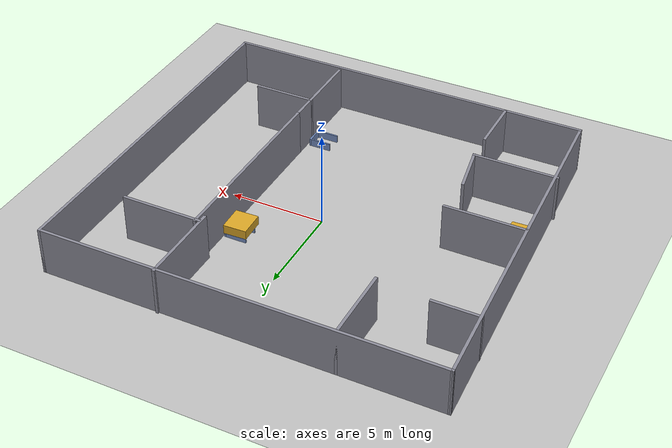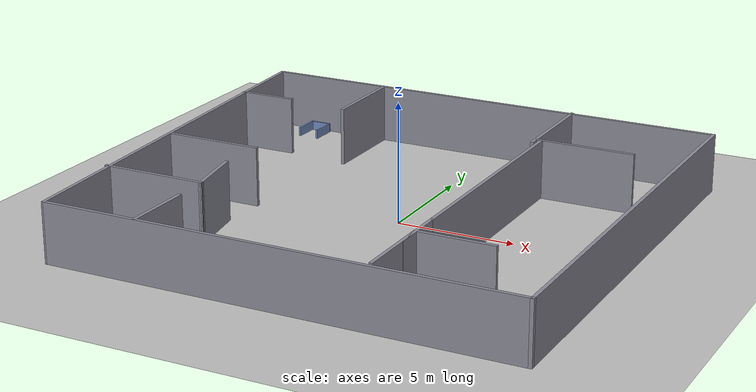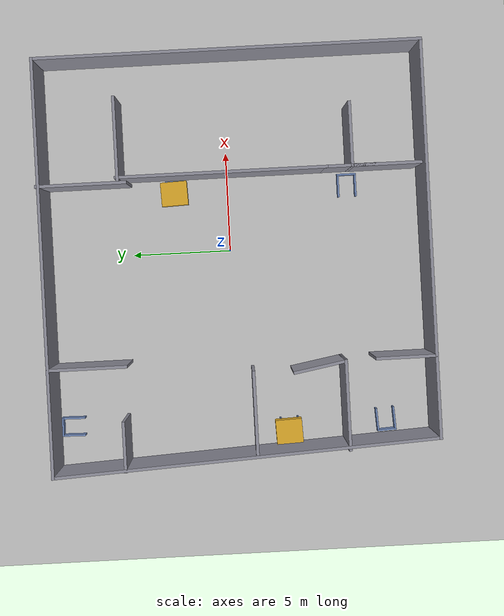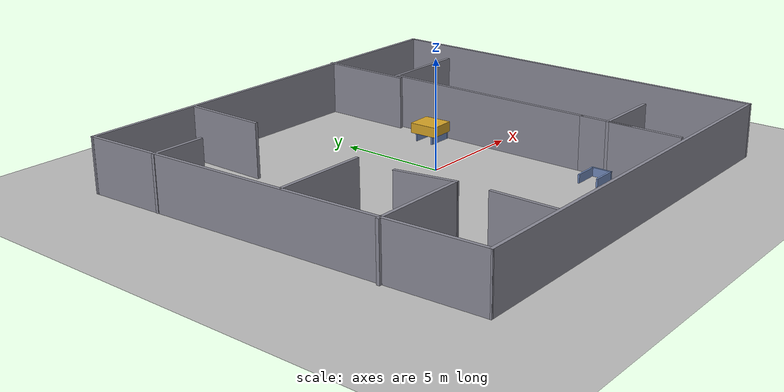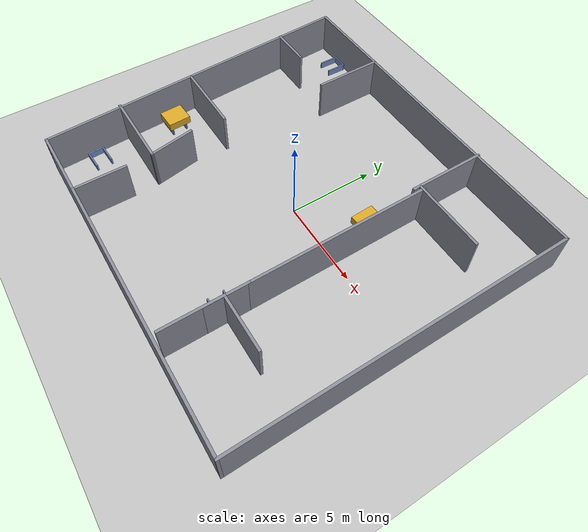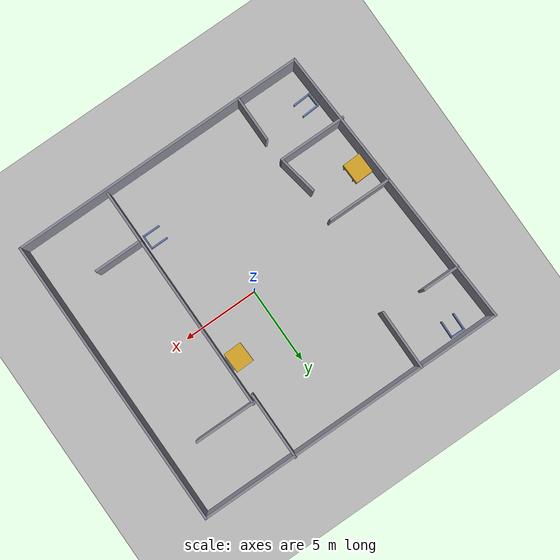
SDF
<?xml version='1.0' ?>
<sdf version='1.7'>
  <world name='default'>
    <gravity>0 0 -9.8</gravity>
    <physics type='ode'>
      <max_step_size>0.001</max_step_size>
      <real_time_factor>1.0</real_time_factor>
      <real_time_update_rate>1000</real_time_update_rate>
    </physics>
    <scene>
      <ambient>0.4 0.4 0.4 1</ambient>
      <background>0.7 0.7 0.7 1</background>
      <shadows>1</shadows>
    </scene>
    <light name='sun' type='directional'>
      <cast_shadows>1</cast_shadows>
      <pose>0 0 10 0 -0 0</pose>
      <diffuse>0.8 0.8 0.8 1</diffuse>
      <specular>0.2 0.2 0.2 1</specular>
      <direction>-0.5 0.1 -0.9</direction>
    </light>
    <model name='ground_plane'>
      <static>true</static>
      <link name='link'>
        <collision name='collision'>
          <geometry><plane><normal>0 0 1</normal><size>100 100</size></plane></geometry>
        </collision>
        <visual name='visual'>
          <geometry><plane><normal>0 0 1</normal><size>100 100</size></plane></geometry>
          <material><ambient>0.75 0.75 0.75 1</ambient><diffuse>0.75 0.75 0.75 1</diffuse></material>
        </visual>
      </link>
    </model>

    <!-- ===== 墙体（外墙 + 内部隔墙，沿用用户世界几何）===== -->
    <model name='wall_0'>
      <static>true</static>
      <pose>-0.424800 9.256000 1.250000 0 0 0.000000</pose>
      <link name='link'>
        <collision name='collision'>
          <geometry><box><size>20.750000 0.150000 2.500000</size></box></geometry>
        </collision>
        <visual name='visual'>
          <geometry><box><size>20.750000 0.150000 2.500000</size></box></geometry>
          <material><ambient>0.55 0.55 0.60 1</ambient><diffuse>0.55 0.55 0.60 1</diffuse></material>
        </visual>
      </link>
    </model>
    <model name='wall_1'>
      <static>true</static>
      <pose>9.875200 -0.294000 1.250000 0 0 -1.570800</pose>
      <link name='link'>
        <collision name='collision'>
          <geometry><box><size>19.250000 0.150000 2.500000</size></box></geometry>
        </collision>
        <visual name='visual'>
          <geometry><box><size>19.250000 0.150000 2.500000</size></box></geometry>
          <material><ambient>0.55 0.55 0.60 1</ambient><diffuse>0.55 0.55 0.60 1</diffuse></material>
        </visual>
      </link>
    </model>
    <model name='wall_2'>
      <static>true</static>
      <pose>0.075200 -9.844000 1.250000 0 0 3.141600</pose>
      <link name='link'>
        <collision name='collision'>
          <geometry><box><size>19.750000 0.150000 2.500000</size></box></geometry>
        </collision>
        <visual name='visual'>
          <geometry><box><size>19.750000 0.150000 2.500000</size></box></geometry>
          <material><ambient>0.55 0.55 0.60 1</ambient><diffuse>0.55 0.55 0.60 1</diffuse></material>
        </visual>
      </link>
    </model>
    <model name='wall_3'>
      <static>true</static>
      <pose>-10.224800 -0.294000 1.250000 0 0 1.623100</pose>
      <link name='link'>
        <collision name='collision'>
          <geometry><box><size>19.276200 0.150000 2.500000</size></box></geometry>
        </collision>
        <visual name='visual'>
          <geometry><box><size>19.276200 0.150000 2.500000</size></box></geometry>
          <material><ambient>0.55 0.55 0.60 1</ambient><diffuse>0.55 0.55 0.60 1</diffuse></material>
        </visual>
      </link>
    </model>
    <model name='wall_4'>
      <static>true</static>
      <pose>-7.898800 -5.390700 1.250000 0 0 0.000000</pose>
      <link name='link'>
        <collision name='collision'>
          <geometry><box><size>4.500000 0.150000 2.500000</size></box></geometry>
        </collision>
        <visual name='visual'>
          <geometry><box><size>4.500000 0.150000 2.500000</size></box></geometry>
          <material><ambient>0.55 0.55 0.60 1</ambient><diffuse>0.55 0.55 0.60 1</diffuse></material>
        </visual>
      </link>
    </model>
    <model name='wall_5'>
      <static>true</static>
      <pose>-5.679800 -8.361800 1.250000 0 0 -1.570800</pose>
      <link name='link'>
        <collision name='collision'>
          <geometry><box><size>3.000000 0.150000 2.500000</size></box></geometry>
        </collision>
        <visual name='visual'>
          <geometry><box><size>3.000000 0.150000 2.500000</size></box></geometry>
          <material><ambient>0.55 0.55 0.60 1</ambient><diffuse>0.55 0.55 0.60 1</diffuse></material>
        </visual>
      </link>
    </model>
    <model name='wall_6'>
      <static>true</static>
      <pose>3.840600 -7.879400 1.250000 0 0 -1.570800</pose>
      <link name='link'>
        <collision name='collision'>
          <geometry><box><size>3.500000 0.150000 2.500000</size></box></geometry>
        </collision>
        <visual name='visual'>
          <geometry><box><size>3.500000 0.150000 2.500000</size></box></geometry>
          <material><ambient>0.55 0.55 0.60 1</ambient><diffuse>0.55 0.55 0.60 1</diffuse></material>
        </visual>
      </link>
    </model>
    <model name='wall_7'>
      <static>true</static>
      <pose>5.390600 -6.204400 1.250000 0 0 0.000000</pose>
      <link name='link'>
        <collision name='collision'>
          <geometry><box><size>3.250000 0.150000 2.500000</size></box></geometry>
        </collision>
        <visual name='visual'>
          <geometry><box><size>3.250000 0.150000 2.500000</size></box></geometry>
          <material><ambient>0.55 0.55 0.60 1</ambient><diffuse>0.55 0.55 0.60 1</diffuse></material>
        </visual>
      </link>
    </model>
    <model name='wall_8'>
      <static>true</static>
      <pose>-8.105200 -0.834000 1.250000 0 0 0.000000</pose>
      <link name='link'>
        <collision name='collision'>
          <geometry><box><size>4.250000 0.150000 2.500000</size></box></geometry>
        </collision>
        <visual name='visual'>
          <geometry><box><size>4.250000 0.150000 2.500000</size></box></geometry>
          <material><ambient>0.55 0.55 0.60 1</ambient><diffuse>0.55 0.55 0.60 1</diffuse></material>
        </visual>
      </link>
    </model>
    <model name='wall_9'>
      <static>true</static>
      <pose>-5.945900 -4.129500 1.250000 0 0 -1.396500</pose>
      <link name='link'>
        <collision name='collision'>
          <geometry><box><size>2.711300 0.150000 2.500000</size></box></geometry>
        </collision>
        <visual name='visual'>
          <geometry><box><size>2.711300 0.150000 2.500000</size></box></geometry>
          <material><ambient>0.55 0.55 0.60 1</ambient><diffuse>0.55 0.55 0.60 1</diffuse></material>
        </visual>
      </link>
    </model>
    <model name='wall_10'>
      <static>true</static>
      <pose>-5.435700 7.331000 1.250000 0 0 -1.570800</pose>
      <link name='link'>
        <collision name='collision'>
          <geometry><box><size>4.000000 0.150000 2.500000</size></box></geometry>
        </collision>
        <visual name='visual'>
          <geometry><box><size>4.000000 0.150000 2.500000</size></box></geometry>
          <material><ambient>0.55 0.55 0.60 1</ambient><diffuse>0.55 0.55 0.60 1</diffuse></material>
        </visual>
      </link>
    </model>
    <model name='wall_11'>
      <static>true</static>
      <pose>3.596500 7.162400 1.250000 0 0 -1.570800</pose>
      <link name='link'>
        <collision name='collision'>
          <geometry><box><size>4.500000 0.150000 2.500000</size></box></geometry>
        </collision>
        <visual name='visual'>
          <geometry><box><size>4.500000 0.150000 2.500000</size></box></geometry>
          <material><ambient>0.55 0.55 0.60 1</ambient><diffuse>0.55 0.55 0.60 1</diffuse></material>
        </visual>
      </link>
    </model>
    <model name='wall_12'>
      <static>true</static>
      <pose>-9.387000 5.675700 1.250000 0 0 0.000000</pose>
      <link name='link'>
        <collision name='collision'>
          <geometry><box><size>2.500000 0.150000 2.500000</size></box></geometry>
        </collision>
        <visual name='visual'>
          <geometry><box><size>2.500000 0.150000 2.500000</size></box></geometry>
          <material><ambient>0.55 0.55 0.60 1</ambient><diffuse>0.55 0.55 0.60 1</diffuse></material>
        </visual>
      </link>
    </model>
    <model name='wall_13'>
      <static>true</static>
      <pose>5.727800 5.350200 1.250000 0 0 0.000000</pose>
      <link name='link'>
        <collision name='collision'>
          <geometry><box><size>4.250000 0.150000 2.500000</size></box></geometry>
        </collision>
        <visual name='visual'>
          <geometry><box><size>4.250000 0.150000 2.500000</size></box></geometry>
          <material><ambient>0.55 0.55 0.60 1</ambient><diffuse>0.55 0.55 0.60 1</diffuse></material>
        </visual>
      </link>
    </model>
    <model name='wall_14'>
      <static>true</static>
      <pose>3.848900 -6.101700 1.250000 0 0 1.570800</pose>
      <link name='link'>
        <collision name='collision'>
          <geometry><box><size>2.500000 0.150000 2.500000</size></box></geometry>
        </collision>
        <visual name='visual'>
          <geometry><box><size>2.500000 0.150000 2.500000</size></box></geometry>
          <material><ambient>0.55 0.55 0.60 1</ambient><diffuse>0.55 0.55 0.60 1</diffuse></material>
        </visual>
      </link>
    </model>
    <model name='wall_15'>
      <static>true</static>
      <pose>3.848900 0.248300 1.250000 0 0 1.570800</pose>
      <link name='link'>
        <collision name='collision'>
          <geometry><box><size>10.500000 0.150000 2.500000</size></box></geometry>
        </collision>
        <visual name='visual'>
          <geometry><box><size>10.500000 0.150000 2.500000</size></box></geometry>
          <material><ambient>0.55 0.55 0.60 1</ambient><diffuse>0.55 0.55 0.60 1</diffuse></material>
        </visual>
      </link>
    </model>

    <!-- ===== 凵型槽位（水平放置，开口朝通道，供 AGV 停到槽口前）===== -->
    <model name='slot_1_part0'>
      <static>true</static>
      <pose>3.081980 3.131590 0.200000 0 0 0.000000</pose>
      <link name='link'>
        <collision name='collision'>
          <geometry><box><size>1.100000 0.080000 0.400000</size></box></geometry>
        </collision>
        <visual name='visual'>
          <geometry><box><size>1.100000 0.080000 0.400000</size></box></geometry>
          <material><ambient>0.45 0.55 0.75 1</ambient><diffuse>0.45 0.55 0.75 1</diffuse></material>
        </visual>
      </link>
    </model>
    <model name='slot_1_part1'>
      <static>true</static>
      <pose>3.081980 2.251590 0.200000 0 0 0.000000</pose>
      <link name='link'>
        <collision name='collision'>
          <geometry><box><size>1.100000 0.080000 0.400000</size></box></geometry>
        </collision>
        <visual name='visual'>
          <geometry><box><size>1.100000 0.080000 0.400000</size></box></geometry>
          <material><ambient>0.45 0.55 0.75 1</ambient><diffuse>0.45 0.55 0.75 1</diffuse></material>
        </visual>
      </link>
    </model>
    <model name='slot_1_part2'>
      <static>true</static>
      <pose>3.671980 2.691590 0.200000 0 0 0.000000</pose>
      <link name='link'>
        <collision name='collision'>
          <geometry><box><size>0.080000 0.960000 0.400000</size></box></geometry>
        </collision>
        <visual name='visual'>
          <geometry><box><size>0.080000 0.960000 0.400000</size></box></geometry>
          <material><ambient>0.45 0.55 0.75 1</ambient><diffuse>0.45 0.55 0.75 1</diffuse></material>
        </visual>
      </link>
    </model>
    <model name='slot_2_part0'>
      <static>true</static>
      <pose>-8.994323 -7.962225 0.200000 0 0 -3.084810</pose>
      <link name='link'>
        <collision name='collision'>
          <geometry><box><size>1.100000 0.080000 0.400000</size></box></geometry>
        </collision>
        <visual name='visual'>
          <geometry><box><size>1.100000 0.080000 0.400000</size></box></geometry>
          <material><ambient>0.45 0.55 0.75 1</ambient><diffuse>0.45 0.55 0.75 1</diffuse></material>
        </visual>
      </link>
    </model>
    <model name='slot_2_part1'>
      <static>true</static>
      <pose>-9.044265 -7.083643 0.200000 0 0 -3.084810</pose>
      <link name='link'>
        <collision name='collision'>
          <geometry><box><size>1.100000 0.080000 0.400000</size></box></geometry>
        </collision>
        <visual name='visual'>
          <geometry><box><size>1.100000 0.080000 0.400000</size></box></geometry>
          <material><ambient>0.45 0.55 0.75 1</ambient><diffuse>0.45 0.55 0.75 1</diffuse></material>
        </visual>
      </link>
    </model>
    <model name='slot_2_part2'>
      <static>true</static>
      <pose>-9.608343 -7.556417 0.200000 0 0 -3.084810</pose>
      <link name='link'>
        <collision name='collision'>
          <geometry><box><size>0.080000 0.960000 0.400000</size></box></geometry>
        </collision>
        <visual name='visual'>
          <geometry><box><size>0.080000 0.960000 0.400000</size></box></geometry>
          <material><ambient>0.45 0.55 0.75 1</ambient><diffuse>0.45 0.55 0.75 1</diffuse></material>
        </visual>
      </link>
    </model>
    <model name='slot_3_part0'>
      <static>true</static>
      <pose>3.007990 -5.699870 0.200000 0 0 0.000000</pose>
      <link name='link'>
        <collision name='collision'>
          <geometry><box><size>1.100000 0.080000 0.400000</size></box></geometry>
        </collision>
        <visual name='visual'>
          <geometry><box><size>1.100000 0.080000 0.400000</size></box></geometry>
          <material><ambient>0.45 0.55 0.75 1</ambient><diffuse>0.45 0.55 0.75 1</diffuse></material>
        </visual>
      </link>
    </model>
    <model name='slot_3_part1'>
      <static>true</static>
      <pose>3.007990 -6.579870 0.200000 0 0 0.000000</pose>
      <link name='link'>
        <collision name='collision'>
          <geometry><box><size>1.100000 0.080000 0.400000</size></box></geometry>
        </collision>
        <visual name='visual'>
          <geometry><box><size>1.100000 0.080000 0.400000</size></box></geometry>
          <material><ambient>0.45 0.55 0.75 1</ambient><diffuse>0.45 0.55 0.75 1</diffuse></material>
        </visual>
      </link>
    </model>
    <model name='slot_3_part2'>
      <static>true</static>
      <pose>3.597990 -6.139870 0.200000 0 0 0.000000</pose>
      <link name='link'>
        <collision name='collision'>
          <geometry><box><size>0.080000 0.960000 0.400000</size></box></geometry>
        </collision>
        <visual name='visual'>
          <geometry><box><size>0.080000 0.960000 0.400000</size></box></geometry>
          <material><ambient>0.45 0.55 0.75 1</ambient><diffuse>0.45 0.55 0.75 1</diffuse></material>
        </visual>
      </link>
    </model>
    <model name='slot_4_part0'>
      <static>true</static>
      <pose>-9.064790 8.474690 0.200000 0 0 1.552170</pose>
      <link name='link'>
        <collision name='collision'>
          <geometry><box><size>1.100000 0.080000 0.400000</size></box></geometry>
        </collision>
        <visual name='visual'>
          <geometry><box><size>1.100000 0.080000 0.400000</size></box></geometry>
          <material><ambient>0.45 0.55 0.75 1</ambient><diffuse>0.45 0.55 0.75 1</diffuse></material>
        </visual>
      </link>
    </model>
    <model name='slot_4_part1'>
      <static>true</static>
      <pose>-8.184942 8.458299 0.200000 0 0 1.552170</pose>
      <link name='link'>
        <collision name='collision'>
          <geometry><box><size>1.100000 0.080000 0.400000</size></box></geometry>
        </collision>
        <visual name='visual'>
          <geometry><box><size>1.100000 0.080000 0.400000</size></box></geometry>
          <material><ambient>0.45 0.55 0.75 1</ambient><diffuse>0.45 0.55 0.75 1</diffuse></material>
        </visual>
      </link>
    </model>
    <model name='slot_4_part2'>
      <static>true</static>
      <pose>-8.613877 9.056392 0.200000 0 0 1.552170</pose>
      <link name='link'>
        <collision name='collision'>
          <geometry><box><size>0.080000 0.960000 0.400000</size></box></geometry>
        </collision>
        <visual name='visual'>
          <geometry><box><size>0.080000 0.960000 0.400000</size></box></geometry>
          <material><ambient>0.45 0.55 0.75 1</ambient><diffuse>0.45 0.55 0.75 1</diffuse></material>
        </visual>
      </link>
    </model>
    <model name='slot_5_part0'>
      <static>true</static>
      <pose>-9.243453 -3.039400 0.200000 0 0 -3.099490</pose>
      <link name='link'>
        <collision name='collision'>
          <geometry><box><size>1.100000 0.080000 0.400000</size></box></geometry>
        </collision>
        <visual name='visual'>
          <geometry><box><size>1.100000 0.080000 0.400000</size></box></geometry>
          <material><ambient>0.45 0.55 0.75 1</ambient><diffuse>0.45 0.55 0.75 1</diffuse></material>
        </visual>
      </link>
    </model>
    <model name='slot_5_part1'>
      <static>true</static>
      <pose>-9.280492 -2.160180 0.200000 0 0 -3.099490</pose>
      <link name='link'>
        <collision name='collision'>
          <geometry><box><size>1.100000 0.080000 0.400000</size></box></geometry>
        </collision>
        <visual name='visual'>
          <geometry><box><size>1.100000 0.080000 0.400000</size></box></geometry>
          <material><ambient>0.45 0.55 0.75 1</ambient><diffuse>0.45 0.55 0.75 1</diffuse></material>
        </visual>
      </link>
    </model>
    <model name='slot_5_part2'>
      <static>true</static>
      <pose>-9.851450 -2.624623 0.200000 0 0 -3.099490</pose>
      <link name='link'>
        <collision name='collision'>
          <geometry><box><size>0.080000 0.960000 0.400000</size></box></geometry>
        </collision>
        <visual name='visual'>
          <geometry><box><size>0.080000 0.960000 0.400000</size></box></geometry>
          <material><ambient>0.45 0.55 0.75 1</ambient><diffuse>0.45 0.55 0.75 1</diffuse></material>
        </visual>
      </link>
    </model>

    <!-- ===== 货物方块（坐在槽顶上；kinematic 体，位姿可由脚本摆放）=====
         （当前阶段它只是场景道具，搬货动作留给 /agv/cargo 服务）===== -->
    <model name='cargo_box_0'>
      <static>false</static>
      <kinematic>true</kinematic>
      <pose>3.028740 2.699860 0.637591 0 0 0.037261</pose>
      <link name='link'>
        <inertial>
          <mass>1.0</mass>
          <inertia><ixx>0.168539</ixx><ixy>0</ixy><ixz>0</ixz>
                   <iyy>0.141055</iyy><iyz>0</iyz><izz>0.271961</izz></inertia>
        </inertial>
        <collision name='collision'>
          <geometry><box><size>1.211140 1.340400 0.475182</size></box></geometry>
        </collision>
        <visual name='visual'>
          <geometry><box><size>1.211140 1.340400 0.475182</size></box></geometry>
          <material><ambient>0.85 0.65 0.15 1</ambient><diffuse>0.85 0.65 0.15 1</diffuse></material>
        </visual>
      </link>
    </model>
    <model name='cargo_box_1'>
      <static>false</static>
      <kinematic>true</kinematic>
      <pose>-9.340370 -2.523900 0.637591 0 0 0.037261</pose>
      <link name='link'>
        <inertial>
          <mass>1.0</mass>
          <inertia><ixx>0.168539</ixx><ixy>0</ixy><ixz>0</ixz>
                   <iyy>0.141055</iyy><iyz>0</iyz><izz>0.271961</izz></inertia>
        </inertial>
        <collision name='collision'>
          <geometry><box><size>1.211140 1.340400 0.475182</size></box></geometry>
        </collision>
        <visual name='visual'>
          <geometry><box><size>1.211140 1.340400 0.475182</size></box></geometry>
          <material><ambient>0.85 0.65 0.15 1</ambient><diffuse>0.85 0.65 0.15 1</diffuse></material>
        </visual>
      </link>
    </model>

    <!-- ===== 让 /gazebo/set_entity_state 与 get_entity_state 可用 =====
         （需要脚本摆放实体位姿时用它，例如以后接仿真搬货插件）===== -->
    <plugin name='gazebo_ros_state' filename='libgazebo_ros_state.so'>
      <ros><namespace>/gazebo</namespace></ros>
      <update_rate>50.0</update_rate>
    </plugin>
  </world>
</sdf>
